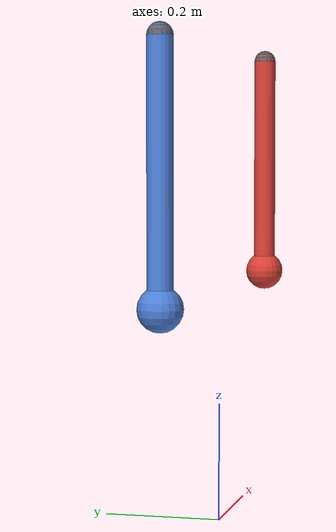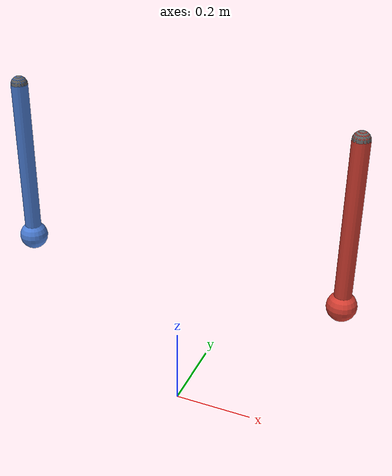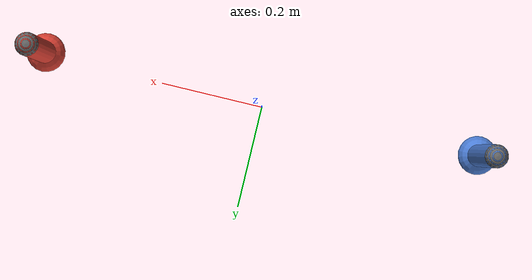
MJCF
<mujoco model="fixed-coupling">
  <option gravity="0 0 -9.81" timestep="0.002"/>
  <compiler angle="radian"/>

  <worldbody>
    <!-- Pendulum A (blue, motor-driven) -->
    <body name="pivot_a" pos="-0.4 0 0.8">
      <geom name="pivot_a_geom" type="sphere" size="0.02"
            rgba="0.4 0.4 0.4 1" contype="0" conaffinity="0"/>
      <body name="arm_a" pos="0 0 0">
        <joint name="j_a" type="hinge" axis="0 1 0" damping="1.0"/>
        <geom name="rod_a" type="capsule" fromto="0 0 0 0 0 -0.4"
              size="0.02" mass="0.5" rgba="0.3 0.5 0.85 1"/>
        <body name="tip_a" pos="0 0 -0.4">
          <geom name="tip_a_geom" type="sphere" size="0.035" mass="0.2"
                rgba="0.3 0.5 0.85 1"/>
          <site name="attach_a" pos="0 0 0" size="0.005"/>
        </body>
      </body>
    </body>

    <!-- Pendulum B (red, passive) -->
    <body name="pivot_b" pos="0.4 0 0.8">
      <geom name="pivot_b_geom" type="sphere" size="0.02"
            rgba="0.4 0.4 0.4 1" contype="0" conaffinity="0"/>
      <body name="arm_b" pos="0 0 0">
        <joint name="j_b" type="hinge" axis="0 1 0" damping="1.0"/>
        <geom name="rod_b" type="capsule" fromto="0 0 0 0 0 -0.4"
              size="0.02" mass="0.5" rgba="0.85 0.25 0.2 1"/>
        <body name="tip_b" pos="0 0 -0.4">
          <geom name="tip_b_geom" type="sphere" size="0.035" mass="0.2"
                rgba="0.85 0.25 0.2 1"/>
          <site name="attach_b" pos="0 0 0" size="0.005"/>
        </body>
      </body>
    </body>
  </worldbody>

  <tendon>
    <fixed name="coupling" stiffness="100" damping="3">
      <joint joint="j_a" coef="1.0"/>
      <joint joint="j_b" coef="-0.5"/>
    </fixed>
  </tendon>

  <actuator>
    <motor name="drive_a" joint="j_a" gear="1"/>
  </actuator>

  <sensor>
    <tendonpos name="ten_pos" tendon="coupling"/>
    <tendonvel name="ten_vel" tendon="coupling"/>
    <jointpos name="angle_a" joint="j_a"/>
    <jointpos name="angle_b" joint="j_b"/>
  </sensor>
</mujoco>
